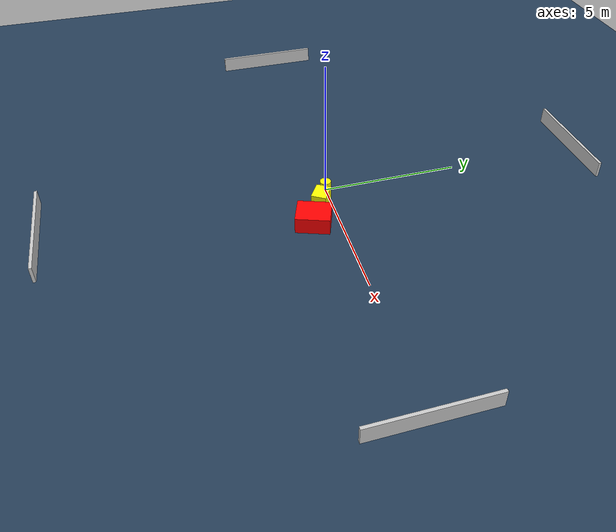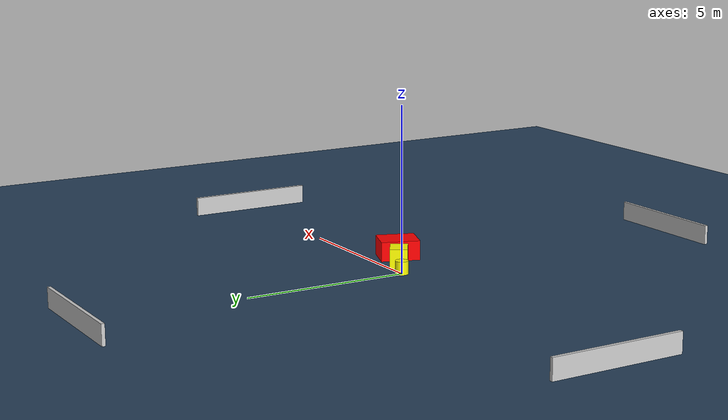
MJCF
<?xml version="1.0" ?>
<mujoco model="generated_environment">
  <option timestep="0.01" integrator="RK4" cone="elliptic"/>
  <default>
    <geom density="1"/>
  </default>
  <asset>
    <texture builtin="gradient" height="3072" name="skybox" rgb1="0.3 0.5 0.7" rgb2="0 0 0" type="skybox" width="512"/>
    <texture builtin="checker" height="300" name="groundplane" rgb1="0.2 0.3 0.4" rgb2="0.1 0.2 0.3" type="2d" width="300"/>
    <material name="groundplane" reflectance="0.2" texrepeat="5 5" texture="groundplane"/>
  </asset>
  <worldbody>
    <light dir="0 0 -1" directional="true" pos="0 0 1.5"/>
    <geom condim="3" friction="0.5 0.005 0.001" material="groundplane" name="floor" pos="0 0 0" size="0 0 0.05" type="plane"/>
    <body name="walls">
      <geom name="wall_1" condim="4" pos="-10.0 0.0 0.3" rgba="0.800000011920929 0.800000011920929 0.800000011920929 1.0" size="0.05 2.0 0.3" type="box"/>
      <geom name="wall_2" condim="4" pos="10.0 0.0 0.3" rgba="0.800000011920929 0.800000011920929 0.800000011920929 1.0" size="0.05 2.0 0.3" type="box"/>
      <geom name="wall_3" condim="4" pos="0.0 -10.0 0.3" rgba="0.800000011920929 0.800000011920929 0.800000011920929 1.0" size="2.0 0.05 0.3" type="box"/>
      <geom name="wall_4" condim="4" pos="0.0 10.0 0.3" rgba="0.800000011920929 0.800000011920929 0.800000011920929 1.0" size="2.0 0.05 0.3" type="box"/>
    </body>
    <body name="robot">
      <joint name="joint_x" type="slide" pos="0 0 0" axis="1 0 0"/>
      <joint name="joint_y" type="slide" pos="0 0 0" axis="0 1 0"/>
      <geom name="robot" type="cylinder" pos="0.0 0.0 0.2" size="0.2 0.2 0.0" mass="5.0" friction="1.0 0.005 0.0001" condim="4" rgba="1.0 1.0 0.0 1.0"/>
    </body>
    <body name="obstacle_1_movable">
      <geom name="obstacle_1_movable" condim="4" pos="0.7777250539973628 -0.3761173338565851 0.3" euler="0 0 327.85785949283195" friction="0.0 0.005 0.001" rgba="1.0 1.0 0.0 1.0" size="0.34471814306965853 0.2668304926141858 0.3" type="box" mass="0.1"/>
      <joint type="free"/>
    </body>
    <body name="obstacle_2_static">
      <geom name="obstacle_2_static" condim="4" pos="1.7195688077509337 -0.9079685221035096 0.3" euler="0 0 159.9244544489613" friction="0.0 0.005 0.001" rgba="1.0 0.0 0.0 1.0" size="0.4934946980869915 0.5978573183773706 0.3" type="box"/>
    </body>
  </worldbody>
  <actuator>
    <motor name="actuator_x" joint="joint_x" gear="1" ctrlrange="-1 1"/>
    <motor name="actuator_y" joint="joint_y" gear="1" ctrlrange="-1 1"/>
  </actuator>
</mujoco>
